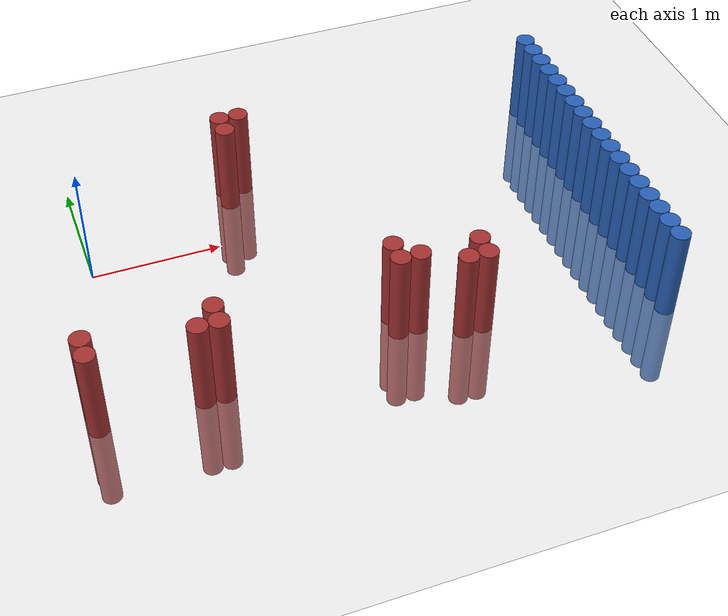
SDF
<sdf version="1.6">
 <world name="default">
  <model name="ground_plane">
   <static>1</static>
   <link name="link">
    <collision name="collision">
     <geometry><plane><normal>0 0 1</normal><size>100 100</size></plane></geometry>
     <surface><friction><ode><mu>100</mu><mu2>50</mu2></ode></friction></surface>
    </collision>
    <visual name="visual">
     <cast_shadows>0</cast_shadows>
     <geometry><plane><normal>0 0 1</normal><size>100 100</size></plane></geometry>
     <material>
      <script><uri>file://media/materials/scripts/gazebo.material</uri><name>Gazebo/Grey</name></script>
     </material>
    </visual>
   </link>
  </model>
  <model name="unit_cylinder_90">
   <static>1</static>
   <pose>3.925000 -1.775000 0.000000 0.000000 0.000000 0.000000</pose>
   <link name="link">
    <inertial>
     <mass>1</mass>
     <inertia><ixx>0.145833</ixx><ixy>0</ixy><ixz>0</ixz><iyy>0.145833</iyy><iyz>0</iyz><izz>0.125</izz></inertia>
    </inertial>
    <collision name="collision">
     <geometry><cylinder><radius>0.075000</radius><length>1.5</length></cylinder></geometry>
    </collision>
    <visual name="visual">
     <geometry><cylinder><radius>0.075000</radius><length>1.5</length></cylinder></geometry>
     <material>
      <ambient>0.152000 0.379000 0.720000 1</ambient>
      <diffuse>0.152000 0.379000 0.720000 1</diffuse>
     </material>
     <material>
      <script><name>Gazebo/Grey</name><uri>file://media/materials/scripts/gazebo.material</uri></script>
     </material>
    </visual>
   </link>
  </model>
  <model name="unit_cylinder_92">
   <static>1</static>
   <pose>3.925000 -1.625000 0.000000 0.000000 0.000000 0.000000</pose>
   <link name="link">
    <inertial>
     <mass>1</mass>
     <inertia><ixx>0.145833</ixx><ixy>0</ixy><ixz>0</ixz><iyy>0.145833</iyy><iyz>0</iyz><izz>0.125</izz></inertia>
    </inertial>
    <collision name="collision">
     <geometry><cylinder><radius>0.075000</radius><length>1.5</length></cylinder></geometry>
    </collision>
    <visual name="visual">
     <geometry><cylinder><radius>0.075000</radius><length>1.5</length></cylinder></geometry>
     <material>
      <ambient>0.152000 0.379000 0.720000 1</ambient>
      <diffuse>0.152000 0.379000 0.720000 1</diffuse>
     </material>
     <material>
      <script><name>Gazebo/Grey</name><uri>file://media/materials/scripts/gazebo.material</uri></script>
     </material>
    </visual>
   </link>
  </model>
  <model name="unit_cylinder_94">
   <static>1</static>
   <pose>3.925000 -1.475000 0.000000 0.000000 0.000000 0.000000</pose>
   <link name="link">
    <inertial>
     <mass>1</mass>
     <inertia><ixx>0.145833</ixx><ixy>0</ixy><ixz>0</ixz><iyy>0.145833</iyy><iyz>0</iyz><izz>0.125</izz></inertia>
    </inertial>
    <collision name="collision">
     <geometry><cylinder><radius>0.075000</radius><length>1.5</length></cylinder></geometry>
    </collision>
    <visual name="visual">
     <geometry><cylinder><radius>0.075000</radius><length>1.5</length></cylinder></geometry>
     <material>
      <ambient>0.152000 0.379000 0.720000 1</ambient>
      <diffuse>0.152000 0.379000 0.720000 1</diffuse>
     </material>
     <material>
      <script><name>Gazebo/Grey</name><uri>file://media/materials/scripts/gazebo.material</uri></script>
     </material>
    </visual>
   </link>
  </model>
  <model name="unit_cylinder_96">
   <static>1</static>
   <pose>3.925000 -1.325000 0.000000 0.000000 0.000000 0.000000</pose>
   <link name="link">
    <inertial>
     <mass>1</mass>
     <inertia><ixx>0.145833</ixx><ixy>0</ixy><ixz>0</ixz><iyy>0.145833</iyy><iyz>0</iyz><izz>0.125</izz></inertia>
    </inertial>
    <collision name="collision">
     <geometry><cylinder><radius>0.075000</radius><length>1.5</length></cylinder></geometry>
    </collision>
    <visual name="visual">
     <geometry><cylinder><radius>0.075000</radius><length>1.5</length></cylinder></geometry>
     <material>
      <ambient>0.152000 0.379000 0.720000 1</ambient>
      <diffuse>0.152000 0.379000 0.720000 1</diffuse>
     </material>
     <material>
      <script><name>Gazebo/Grey</name><uri>file://media/materials/scripts/gazebo.material</uri></script>
     </material>
    </visual>
   </link>
  </model>
  <model name="unit_cylinder_98">
   <static>1</static>
   <pose>3.925000 -1.175000 0.000000 0.000000 0.000000 0.000000</pose>
   <link name="link">
    <inertial>
     <mass>1</mass>
     <inertia><ixx>0.145833</ixx><ixy>0</ixy><ixz>0</ixz><iyy>0.145833</iyy><iyz>0</iyz><izz>0.125</izz></inertia>
    </inertial>
    <collision name="collision">
     <geometry><cylinder><radius>0.075000</radius><length>1.5</length></cylinder></geometry>
    </collision>
    <visual name="visual">
     <geometry><cylinder><radius>0.075000</radius><length>1.5</length></cylinder></geometry>
     <material>
      <ambient>0.152000 0.379000 0.720000 1</ambient>
      <diffuse>0.152000 0.379000 0.720000 1</diffuse>
     </material>
     <material>
      <script><name>Gazebo/Grey</name><uri>file://media/materials/scripts/gazebo.material</uri></script>
     </material>
    </visual>
   </link>
  </model>
  <model name="unit_cylinder_100">
   <static>1</static>
   <pose>3.925000 -1.025000 0.000000 0.000000 0.000000 0.000000</pose>
   <link name="link">
    <inertial>
     <mass>1</mass>
     <inertia><ixx>0.145833</ixx><ixy>0</ixy><ixz>0</ixz><iyy>0.145833</iyy><iyz>0</iyz><izz>0.125</izz></inertia>
    </inertial>
    <collision name="collision">
     <geometry><cylinder><radius>0.075000</radius><length>1.5</length></cylinder></geometry>
    </collision>
    <visual name="visual">
     <geometry><cylinder><radius>0.075000</radius><length>1.5</length></cylinder></geometry>
     <material>
      <ambient>0.152000 0.379000 0.720000 1</ambient>
      <diffuse>0.152000 0.379000 0.720000 1</diffuse>
     </material>
     <material>
      <script><name>Gazebo/Grey</name><uri>file://media/materials/scripts/gazebo.material</uri></script>
     </material>
    </visual>
   </link>
  </model>
  <model name="unit_cylinder_102">
   <static>1</static>
   <pose>3.925000 -0.875000 0.000000 0.000000 0.000000 0.000000</pose>
   <link name="link">
    <inertial>
     <mass>1</mass>
     <inertia><ixx>0.145833</ixx><ixy>0</ixy><ixz>0</ixz><iyy>0.145833</iyy><iyz>0</iyz><izz>0.125</izz></inertia>
    </inertial>
    <collision name="collision">
     <geometry><cylinder><radius>0.075000</radius><length>1.5</length></cylinder></geometry>
    </collision>
    <visual name="visual">
     <geometry><cylinder><radius>0.075000</radius><length>1.5</length></cylinder></geometry>
     <material>
      <ambient>0.152000 0.379000 0.720000 1</ambient>
      <diffuse>0.152000 0.379000 0.720000 1</diffuse>
     </material>
     <material>
      <script><name>Gazebo/Grey</name><uri>file://media/materials/scripts/gazebo.material</uri></script>
     </material>
    </visual>
   </link>
  </model>
  <model name="unit_cylinder_104">
   <static>1</static>
   <pose>3.925000 -0.725000 0.000000 0.000000 0.000000 0.000000</pose>
   <link name="link">
    <inertial>
     <mass>1</mass>
     <inertia><ixx>0.145833</ixx><ixy>0</ixy><ixz>0</ixz><iyy>0.145833</iyy><iyz>0</iyz><izz>0.125</izz></inertia>
    </inertial>
    <collision name="collision">
     <geometry><cylinder><radius>0.075000</radius><length>1.5</length></cylinder></geometry>
    </collision>
    <visual name="visual">
     <geometry><cylinder><radius>0.075000</radius><length>1.5</length></cylinder></geometry>
     <material>
      <ambient>0.152000 0.379000 0.720000 1</ambient>
      <diffuse>0.152000 0.379000 0.720000 1</diffuse>
     </material>
     <material>
      <script><name>Gazebo/Grey</name><uri>file://media/materials/scripts/gazebo.material</uri></script>
     </material>
    </visual>
   </link>
  </model>
  <model name="unit_cylinder_106">
   <static>1</static>
   <pose>3.925000 -0.575000 0.000000 0.000000 0.000000 0.000000</pose>
   <link name="link">
    <inertial>
     <mass>1</mass>
     <inertia><ixx>0.145833</ixx><ixy>0</ixy><ixz>0</ixz><iyy>0.145833</iyy><iyz>0</iyz><izz>0.125</izz></inertia>
    </inertial>
    <collision name="collision">
     <geometry><cylinder><radius>0.075000</radius><length>1.5</length></cylinder></geometry>
    </collision>
    <visual name="visual">
     <geometry><cylinder><radius>0.075000</radius><length>1.5</length></cylinder></geometry>
     <material>
      <ambient>0.152000 0.379000 0.720000 1</ambient>
      <diffuse>0.152000 0.379000 0.720000 1</diffuse>
     </material>
     <material>
      <script><name>Gazebo/Grey</name><uri>file://media/materials/scripts/gazebo.material</uri></script>
     </material>
    </visual>
   </link>
  </model>
  <model name="unit_cylinder_108">
   <static>1</static>
   <pose>3.925000 -0.425000 0.000000 0.000000 0.000000 0.000000</pose>
   <link name="link">
    <inertial>
     <mass>1</mass>
     <inertia><ixx>0.145833</ixx><ixy>0</ixy><ixz>0</ixz><iyy>0.145833</iyy><iyz>0</iyz><izz>0.125</izz></inertia>
    </inertial>
    <collision name="collision">
     <geometry><cylinder><radius>0.075000</radius><length>1.5</length></cylinder></geometry>
    </collision>
    <visual name="visual">
     <geometry><cylinder><radius>0.075000</radius><length>1.5</length></cylinder></geometry>
     <material>
      <ambient>0.152000 0.379000 0.720000 1</ambient>
      <diffuse>0.152000 0.379000 0.720000 1</diffuse>
     </material>
     <material>
      <script><name>Gazebo/Grey</name><uri>file://media/materials/scripts/gazebo.material</uri></script>
     </material>
    </visual>
   </link>
  </model>
  <model name="unit_cylinder_110">
   <static>1</static>
   <pose>3.925000 -0.275000 0.000000 0.000000 0.000000 0.000000</pose>
   <link name="link">
    <inertial>
     <mass>1</mass>
     <inertia><ixx>0.145833</ixx><ixy>0</ixy><ixz>0</ixz><iyy>0.145833</iyy><iyz>0</iyz><izz>0.125</izz></inertia>
    </inertial>
    <collision name="collision">
     <geometry><cylinder><radius>0.075000</radius><length>1.5</length></cylinder></geometry>
    </collision>
    <visual name="visual">
     <geometry><cylinder><radius>0.075000</radius><length>1.5</length></cylinder></geometry>
     <material>
      <ambient>0.152000 0.379000 0.720000 1</ambient>
      <diffuse>0.152000 0.379000 0.720000 1</diffuse>
     </material>
     <material>
      <script><name>Gazebo/Grey</name><uri>file://media/materials/scripts/gazebo.material</uri></script>
     </material>
    </visual>
   </link>
  </model>
  <model name="unit_cylinder_112">
   <static>1</static>
   <pose>3.925000 -0.125000 0.000000 0.000000 0.000000 0.000000</pose>
   <link name="link">
    <inertial>
     <mass>1</mass>
     <inertia><ixx>0.145833</ixx><ixy>0</ixy><ixz>0</ixz><iyy>0.145833</iyy><iyz>0</iyz><izz>0.125</izz></inertia>
    </inertial>
    <collision name="collision">
     <geometry><cylinder><radius>0.075000</radius><length>1.5</length></cylinder></geometry>
    </collision>
    <visual name="visual">
     <geometry><cylinder><radius>0.075000</radius><length>1.5</length></cylinder></geometry>
     <material>
      <ambient>0.152000 0.379000 0.720000 1</ambient>
      <diffuse>0.152000 0.379000 0.720000 1</diffuse>
     </material>
     <material>
      <script><name>Gazebo/Grey</name><uri>file://media/materials/scripts/gazebo.material</uri></script>
     </material>
    </visual>
   </link>
  </model>
  <model name="unit_cylinder_114">
   <static>1</static>
   <pose>3.925000 0.025000 0.000000 0.000000 0.000000 0.000000</pose>
   <link name="link">
    <inertial>
     <mass>1</mass>
     <inertia><ixx>0.145833</ixx><ixy>0</ixy><ixz>0</ixz><iyy>0.145833</iyy><iyz>0</iyz><izz>0.125</izz></inertia>
    </inertial>
    <collision name="collision">
     <geometry><cylinder><radius>0.075000</radius><length>1.5</length></cylinder></geometry>
    </collision>
    <visual name="visual">
     <geometry><cylinder><radius>0.075000</radius><length>1.5</length></cylinder></geometry>
     <material>
      <ambient>0.152000 0.379000 0.720000 1</ambient>
      <diffuse>0.152000 0.379000 0.720000 1</diffuse>
     </material>
     <material>
      <script><name>Gazebo/Grey</name><uri>file://media/materials/scripts/gazebo.material</uri></script>
     </material>
    </visual>
   </link>
  </model>
  <model name="unit_cylinder_116">
   <static>1</static>
   <pose>3.925000 0.175000 0.000000 0.000000 0.000000 0.000000</pose>
   <link name="link">
    <inertial>
     <mass>1</mass>
     <inertia><ixx>0.145833</ixx><ixy>0</ixy><ixz>0</ixz><iyy>0.145833</iyy><iyz>0</iyz><izz>0.125</izz></inertia>
    </inertial>
    <collision name="collision">
     <geometry><cylinder><radius>0.075000</radius><length>1.5</length></cylinder></geometry>
    </collision>
    <visual name="visual">
     <geometry><cylinder><radius>0.075000</radius><length>1.5</length></cylinder></geometry>
     <material>
      <ambient>0.152000 0.379000 0.720000 1</ambient>
      <diffuse>0.152000 0.379000 0.720000 1</diffuse>
     </material>
     <material>
      <script><name>Gazebo/Grey</name><uri>file://media/materials/scripts/gazebo.material</uri></script>
     </material>
    </visual>
   </link>
  </model>
  <model name="unit_cylinder_118">
   <static>1</static>
   <pose>3.925000 0.325000 0.000000 0.000000 0.000000 0.000000</pose>
   <link name="link">
    <inertial>
     <mass>1</mass>
     <inertia><ixx>0.145833</ixx><ixy>0</ixy><ixz>0</ixz><iyy>0.145833</iyy><iyz>0</iyz><izz>0.125</izz></inertia>
    </inertial>
    <collision name="collision">
     <geometry><cylinder><radius>0.075000</radius><length>1.5</length></cylinder></geometry>
    </collision>
    <visual name="visual">
     <geometry><cylinder><radius>0.075000</radius><length>1.5</length></cylinder></geometry>
     <material>
      <ambient>0.152000 0.379000 0.720000 1</ambient>
      <diffuse>0.152000 0.379000 0.720000 1</diffuse>
     </material>
     <material>
      <script><name>Gazebo/Grey</name><uri>file://media/materials/scripts/gazebo.material</uri></script>
     </material>
    </visual>
   </link>
  </model>
  <model name="unit_cylinder_120">
   <static>1</static>
   <pose>3.925000 0.475000 0.000000 0.000000 0.000000 0.000000</pose>
   <link name="link">
    <inertial>
     <mass>1</mass>
     <inertia><ixx>0.145833</ixx><ixy>0</ixy><ixz>0</ixz><iyy>0.145833</iyy><iyz>0</iyz><izz>0.125</izz></inertia>
    </inertial>
    <collision name="collision">
     <geometry><cylinder><radius>0.075000</radius><length>1.5</length></cylinder></geometry>
    </collision>
    <visual name="visual">
     <geometry><cylinder><radius>0.075000</radius><length>1.5</length></cylinder></geometry>
     <material>
      <ambient>0.152000 0.379000 0.720000 1</ambient>
      <diffuse>0.152000 0.379000 0.720000 1</diffuse>
     </material>
     <material>
      <script><name>Gazebo/Grey</name><uri>file://media/materials/scripts/gazebo.material</uri></script>
     </material>
    </visual>
   </link>
  </model>
  <model name="unit_cylinder_122">
   <static>1</static>
   <pose>3.925000 0.625000 0.000000 0.000000 0.000000 0.000000</pose>
   <link name="link">
    <inertial>
     <mass>1</mass>
     <inertia><ixx>0.145833</ixx><ixy>0</ixy><ixz>0</ixz><iyy>0.145833</iyy><iyz>0</iyz><izz>0.125</izz></inertia>
    </inertial>
    <collision name="collision">
     <geometry><cylinder><radius>0.075000</radius><length>1.5</length></cylinder></geometry>
    </collision>
    <visual name="visual">
     <geometry><cylinder><radius>0.075000</radius><length>1.5</length></cylinder></geometry>
     <material>
      <ambient>0.152000 0.379000 0.720000 1</ambient>
      <diffuse>0.152000 0.379000 0.720000 1</diffuse>
     </material>
     <material>
      <script><name>Gazebo/Grey</name><uri>file://media/materials/scripts/gazebo.material</uri></script>
     </material>
    </visual>
   </link>
  </model>
  <model name="unit_cylinder_124">
   <static>1</static>
   <pose>3.925000 0.775000 0.000000 0.000000 0.000000 0.000000</pose>
   <link name="link">
    <inertial>
     <mass>1</mass>
     <inertia><ixx>0.145833</ixx><ixy>0</ixy><ixz>0</ixz><iyy>0.145833</iyy><iyz>0</iyz><izz>0.125</izz></inertia>
    </inertial>
    <collision name="collision">
     <geometry><cylinder><radius>0.075000</radius><length>1.5</length></cylinder></geometry>
    </collision>
    <visual name="visual">
     <geometry><cylinder><radius>0.075000</radius><length>1.5</length></cylinder></geometry>
     <material>
      <ambient>0.152000 0.379000 0.720000 1</ambient>
      <diffuse>0.152000 0.379000 0.720000 1</diffuse>
     </material>
     <material>
      <script><name>Gazebo/Grey</name><uri>file://media/materials/scripts/gazebo.material</uri></script>
     </material>
    </visual>
   </link>
  </model>
  <model name="unit_cylinder_302">
   <static>1</static>
   <pose>-0.275000 -1.475000 0.000000 0.000000 0.000000 0.000000</pose>
   <link name="link">
    <inertial>
     <mass>1</mass>
     <inertia><ixx>0.145833</ixx><ixy>0</ixy><ixz>0</ixz><iyy>0.145833</iyy><iyz>0</iyz><izz>0.125</izz></inertia>
    </inertial>
    <collision name="collision">
     <geometry><cylinder><radius>0.075000</radius><length>1.5</length></cylinder></geometry>
    </collision>
    <visual name="visual">
     <geometry><cylinder><radius>0.075000</radius><length>1.5</length></cylinder></geometry>
     <material>
      <ambient>0.648000 0.192000 0.192000 1</ambient>
      <diffuse>0.648000 0.192000 0.192000 1</diffuse>
     </material>
     <material>
      <script><name>Gazebo/Grey</name><uri>file://media/materials/scripts/gazebo.material</uri></script>
     </material>
    </visual>
   </link>
  </model>
  <model name="unit_cylinder_303">
   <static>1</static>
   <pose>-0.275000 -1.325000 0.000000 0.000000 0.000000 0.000000</pose>
   <link name="link">
    <inertial>
     <mass>1</mass>
     <inertia><ixx>0.145833</ixx><ixy>0</ixy><ixz>0</ixz><iyy>0.145833</iyy><iyz>0</iyz><izz>0.125</izz></inertia>
    </inertial>
    <collision name="collision">
     <geometry><cylinder><radius>0.075000</radius><length>1.5</length></cylinder></geometry>
    </collision>
    <visual name="visual">
     <geometry><cylinder><radius>0.075000</radius><length>1.5</length></cylinder></geometry>
     <material>
      <ambient>0.648000 0.192000 0.192000 1</ambient>
      <diffuse>0.648000 0.192000 0.192000 1</diffuse>
     </material>
     <material>
      <script><name>Gazebo/Grey</name><uri>file://media/materials/scripts/gazebo.material</uri></script>
     </material>
    </visual>
   </link>
  </model>
  <model name="unit_cylinder_307">
   <static>1</static>
   <pose>0.475000 -1.475000 0.000000 0.000000 0.000000 0.000000</pose>
   <link name="link">
    <inertial>
     <mass>1</mass>
     <inertia><ixx>0.145833</ixx><ixy>0</ixy><ixz>0</ixz><iyy>0.145833</iyy><iyz>0</iyz><izz>0.125</izz></inertia>
    </inertial>
    <collision name="collision">
     <geometry><cylinder><radius>0.075000</radius><length>1.5</length></cylinder></geometry>
    </collision>
    <visual name="visual">
     <geometry><cylinder><radius>0.075000</radius><length>1.5</length></cylinder></geometry>
     <material>
      <ambient>0.648000 0.192000 0.192000 1</ambient>
      <diffuse>0.648000 0.192000 0.192000 1</diffuse>
     </material>
     <material>
      <script><name>Gazebo/Grey</name><uri>file://media/materials/scripts/gazebo.material</uri></script>
     </material>
    </visual>
   </link>
  </model>
  <model name="unit_cylinder_308">
   <static>1</static>
   <pose>0.625000 -1.475000 0.000000 0.000000 0.000000 0.000000</pose>
   <link name="link">
    <inertial>
     <mass>1</mass>
     <inertia><ixx>0.145833</ixx><ixy>0</ixy><ixz>0</ixz><iyy>0.145833</iyy><iyz>0</iyz><izz>0.125</izz></inertia>
    </inertial>
    <collision name="collision">
     <geometry><cylinder><radius>0.075000</radius><length>1.5</length></cylinder></geometry>
    </collision>
    <visual name="visual">
     <geometry><cylinder><radius>0.075000</radius><length>1.5</length></cylinder></geometry>
     <material>
      <ambient>0.648000 0.192000 0.192000 1</ambient>
      <diffuse>0.648000 0.192000 0.192000 1</diffuse>
     </material>
     <material>
      <script><name>Gazebo/Grey</name><uri>file://media/materials/scripts/gazebo.material</uri></script>
     </material>
    </visual>
   </link>
  </model>
  <model name="unit_cylinder_309">
   <static>1</static>
   <pose>0.625000 -1.325000 0.000000 0.000000 0.000000 0.000000</pose>
   <link name="link">
    <inertial>
     <mass>1</mass>
     <inertia><ixx>0.145833</ixx><ixy>0</ixy><ixz>0</ixz><iyy>0.145833</iyy><iyz>0</iyz><izz>0.125</izz></inertia>
    </inertial>
    <collision name="collision">
     <geometry><cylinder><radius>0.075000</radius><length>1.5</length></cylinder></geometry>
    </collision>
    <visual name="visual">
     <geometry><cylinder><radius>0.075000</radius><length>1.5</length></cylinder></geometry>
     <material>
      <ambient>0.648000 0.192000 0.192000 1</ambient>
      <diffuse>0.648000 0.192000 0.192000 1</diffuse>
     </material>
     <material>
      <script><name>Gazebo/Grey</name><uri>file://media/materials/scripts/gazebo.material</uri></script>
     </material>
    </visual>
   </link>
  </model>
  <model name="unit_cylinder_310">
   <static>1</static>
   <pose>1.225000 0.475000 0.000000 0.000000 0.000000 0.000000</pose>
   <link name="link">
    <inertial>
     <mass>1</mass>
     <inertia><ixx>0.145833</ixx><ixy>0</ixy><ixz>0</ixz><iyy>0.145833</iyy><iyz>0</iyz><izz>0.125</izz></inertia>
    </inertial>
    <collision name="collision">
     <geometry><cylinder><radius>0.075000</radius><length>1.5</length></cylinder></geometry>
    </collision>
    <visual name="visual">
     <geometry><cylinder><radius>0.075000</radius><length>1.5</length></cylinder></geometry>
     <material>
      <ambient>0.648000 0.192000 0.192000 1</ambient>
      <diffuse>0.648000 0.192000 0.192000 1</diffuse>
     </material>
     <material>
      <script><name>Gazebo/Grey</name><uri>file://media/materials/scripts/gazebo.material</uri></script>
     </material>
    </visual>
   </link>
  </model>
  <model name="unit_cylinder_311">
   <static>1</static>
   <pose>1.225000 0.625000 0.000000 0.000000 0.000000 0.000000</pose>
   <link name="link">
    <inertial>
     <mass>1</mass>
     <inertia><ixx>0.145833</ixx><ixy>0</ixy><ixz>0</ixz><iyy>0.145833</iyy><iyz>0</iyz><izz>0.125</izz></inertia>
    </inertial>
    <collision name="collision">
     <geometry><cylinder><radius>0.075000</radius><length>1.5</length></cylinder></geometry>
    </collision>
    <visual name="visual">
     <geometry><cylinder><radius>0.075000</radius><length>1.5</length></cylinder></geometry>
     <material>
      <ambient>0.648000 0.192000 0.192000 1</ambient>
      <diffuse>0.648000 0.192000 0.192000 1</diffuse>
     </material>
     <material>
      <script><name>Gazebo/Grey</name><uri>file://media/materials/scripts/gazebo.material</uri></script>
     </material>
    </visual>
   </link>
  </model>
  <model name="unit_cylinder_312">
   <static>1</static>
   <pose>1.375000 0.625000 0.000000 0.000000 0.000000 0.000000</pose>
   <link name="link">
    <inertial>
     <mass>1</mass>
     <inertia><ixx>0.145833</ixx><ixy>0</ixy><ixz>0</ixz><iyy>0.145833</iyy><iyz>0</iyz><izz>0.125</izz></inertia>
    </inertial>
    <collision name="collision">
     <geometry><cylinder><radius>0.075000</radius><length>1.5</length></cylinder></geometry>
    </collision>
    <visual name="visual">
     <geometry><cylinder><radius>0.075000</radius><length>1.5</length></cylinder></geometry>
     <material>
      <ambient>0.648000 0.192000 0.192000 1</ambient>
      <diffuse>0.648000 0.192000 0.192000 1</diffuse>
     </material>
     <material>
      <script><name>Gazebo/Grey</name><uri>file://media/materials/scripts/gazebo.material</uri></script>
     </material>
    </visual>
   </link>
  </model>
  <model name="unit_cylinder_317">
   <static>1</static>
   <pose>1.975000 -1.325000 0.000000 0.000000 0.000000 0.000000</pose>
   <link name="link">
    <inertial>
     <mass>1</mass>
     <inertia><ixx>0.145833</ixx><ixy>0</ixy><ixz>0</ixz><iyy>0.145833</iyy><iyz>0</iyz><izz>0.125</izz></inertia>
    </inertial>
    <collision name="collision">
     <geometry><cylinder><radius>0.075000</radius><length>1.5</length></cylinder></geometry>
    </collision>
    <visual name="visual">
     <geometry><cylinder><radius>0.075000</radius><length>1.5</length></cylinder></geometry>
     <material>
      <ambient>0.648000 0.192000 0.192000 1</ambient>
      <diffuse>0.648000 0.192000 0.192000 1</diffuse>
     </material>
     <material>
      <script><name>Gazebo/Grey</name><uri>file://media/materials/scripts/gazebo.material</uri></script>
     </material>
    </visual>
   </link>
  </model>
  <model name="unit_cylinder_318">
   <static>1</static>
   <pose>1.975000 -1.175000 0.000000 0.000000 0.000000 0.000000</pose>
   <link name="link">
    <inertial>
     <mass>1</mass>
     <inertia><ixx>0.145833</ixx><ixy>0</ixy><ixz>0</ixz><iyy>0.145833</iyy><iyz>0</iyz><izz>0.125</izz></inertia>
    </inertial>
    <collision name="collision">
     <geometry><cylinder><radius>0.075000</radius><length>1.5</length></cylinder></geometry>
    </collision>
    <visual name="visual">
     <geometry><cylinder><radius>0.075000</radius><length>1.5</length></cylinder></geometry>
     <material>
      <ambient>0.648000 0.192000 0.192000 1</ambient>
      <diffuse>0.648000 0.192000 0.192000 1</diffuse>
     </material>
     <material>
      <script><name>Gazebo/Grey</name><uri>file://media/materials/scripts/gazebo.material</uri></script>
     </material>
    </visual>
   </link>
  </model>
  <model name="unit_cylinder_319">
   <static>1</static>
   <pose>2.125000 -1.325000 0.000000 0.000000 0.000000 0.000000</pose>
   <link name="link">
    <inertial>
     <mass>1</mass>
     <inertia><ixx>0.145833</ixx><ixy>0</ixy><ixz>0</ixz><iyy>0.145833</iyy><iyz>0</iyz><izz>0.125</izz></inertia>
    </inertial>
    <collision name="collision">
     <geometry><cylinder><radius>0.075000</radius><length>1.5</length></cylinder></geometry>
    </collision>
    <visual name="visual">
     <geometry><cylinder><radius>0.075000</radius><length>1.5</length></cylinder></geometry>
     <material>
      <ambient>0.648000 0.192000 0.192000 1</ambient>
      <diffuse>0.648000 0.192000 0.192000 1</diffuse>
     </material>
     <material>
      <script><name>Gazebo/Grey</name><uri>file://media/materials/scripts/gazebo.material</uri></script>
     </material>
    </visual>
   </link>
  </model>
  <model name="unit_cylinder_320">
   <static>1</static>
   <pose>2.425000 -1.475000 0.000000 0.000000 0.000000 0.000000</pose>
   <link name="link">
    <inertial>
     <mass>1</mass>
     <inertia><ixx>0.145833</ixx><ixy>0</ixy><ixz>0</ixz><iyy>0.145833</iyy><iyz>0</iyz><izz>0.125</izz></inertia>
    </inertial>
    <collision name="collision">
     <geometry><cylinder><radius>0.075000</radius><length>1.5</length></cylinder></geometry>
    </collision>
    <visual name="visual">
     <geometry><cylinder><radius>0.075000</radius><length>1.5</length></cylinder></geometry>
     <material>
      <ambient>0.648000 0.192000 0.192000 1</ambient>
      <diffuse>0.648000 0.192000 0.192000 1</diffuse>
     </material>
     <material>
      <script><name>Gazebo/Grey</name><uri>file://media/materials/scripts/gazebo.material</uri></script>
     </material>
    </visual>
   </link>
  </model>
  <model name="unit_cylinder_326">
   <static>1</static>
   <pose>2.575000 -1.475000 0.000000 0.000000 0.000000 0.000000</pose>
   <link name="link">
    <inertial>
     <mass>1</mass>
     <inertia><ixx>0.145833</ixx><ixy>0</ixy><ixz>0</ixz><iyy>0.145833</iyy><iyz>0</iyz><izz>0.125</izz></inertia>
    </inertial>
    <collision name="collision">
     <geometry><cylinder><radius>0.075000</radius><length>1.5</length></cylinder></geometry>
    </collision>
    <visual name="visual">
     <geometry><cylinder><radius>0.075000</radius><length>1.5</length></cylinder></geometry>
     <material>
      <ambient>0.648000 0.192000 0.192000 1</ambient>
      <diffuse>0.648000 0.192000 0.192000 1</diffuse>
     </material>
     <material>
      <script><name>Gazebo/Grey</name><uri>file://media/materials/scripts/gazebo.material</uri></script>
     </material>
    </visual>
   </link>
  </model>
  <model name="unit_cylinder_327">
   <static>1</static>
   <pose>2.575000 -1.325000 0.000000 0.000000 0.000000 0.000000</pose>
   <link name="link">
    <inertial>
     <mass>1</mass>
     <inertia><ixx>0.145833</ixx><ixy>0</ixy><ixz>0</ixz><iyy>0.145833</iyy><iyz>0</iyz><izz>0.125</izz></inertia>
    </inertial>
    <collision name="collision">
     <geometry><cylinder><radius>0.075000</radius><length>1.5</length></cylinder></geometry>
    </collision>
    <visual name="visual">
     <geometry><cylinder><radius>0.075000</radius><length>1.5</length></cylinder></geometry>
     <material>
      <ambient>0.648000 0.192000 0.192000 1</ambient>
      <diffuse>0.648000 0.192000 0.192000 1</diffuse>
     </material>
     <material>
      <script><name>Gazebo/Grey</name><uri>file://media/materials/scripts/gazebo.material</uri></script>
     </material>
    </visual>
   </link>
  </model>
  <model name="unit_cylinder_345">
   <static>1</static>
   <pose>3.925000 -1.775000 0.000000 0.000000 0.000000 0.000000</pose>
   <link name="link">
    <inertial>
     <mass>1</mass>
     <inertia><ixx>0.145833</ixx><ixy>0</ixy><ixz>0</ixz><iyy>0.145833</iyy><iyz>0</iyz><izz>0.125</izz></inertia>
    </inertial>
    <collision name="collision">
     <geometry><cylinder><radius>0.075000</radius><length>1.5</length></cylinder></geometry>
    </collision>
    <visual name="visual">
     <geometry><cylinder><radius>0.075000</radius><length>1.5</length></cylinder></geometry>
     <material>
      <ambient>0.152000 0.379000 0.720000 1</ambient>
      <diffuse>0.152000 0.379000 0.720000 1</diffuse>
     </material>
     <material>
      <script><name>Gazebo/Grey</name><uri>file://media/materials/scripts/gazebo.material</uri></script>
     </material>
    </visual>
   </link>
  </model>
  <model name="unit_cylinder_346">
   <static>1</static>
   <pose>3.925000 -1.625000 0.000000 0.000000 0.000000 0.000000</pose>
   <link name="link">
    <inertial>
     <mass>1</mass>
     <inertia><ixx>0.145833</ixx><ixy>0</ixy><ixz>0</ixz><iyy>0.145833</iyy><iyz>0</iyz><izz>0.125</izz></inertia>
    </inertial>
    <collision name="collision">
     <geometry><cylinder><radius>0.075000</radius><length>1.5</length></cylinder></geometry>
    </collision>
    <visual name="visual">
     <geometry><cylinder><radius>0.075000</radius><length>1.5</length></cylinder></geometry>
     <material>
      <ambient>0.152000 0.379000 0.720000 1</ambient>
      <diffuse>0.152000 0.379000 0.720000 1</diffuse>
     </material>
     <material>
      <script><name>Gazebo/Grey</name><uri>file://media/materials/scripts/gazebo.material</uri></script>
     </material>
    </visual>
   </link>
  </model>
  <model name="unit_cylinder_347">
   <static>1</static>
   <pose>3.925000 -1.475000 0.000000 0.000000 0.000000 0.000000</pose>
   <link name="link">
    <inertial>
     <mass>1</mass>
     <inertia><ixx>0.145833</ixx><ixy>0</ixy><ixz>0</ixz><iyy>0.145833</iyy><iyz>0</iyz><izz>0.125</izz></inertia>
    </inertial>
    <collision name="collision">
     <geometry><cylinder><radius>0.075000</radius><length>1.5</length></cylinder></geometry>
    </collision>
    <visual name="visual">
     <geometry><cylinder><radius>0.075000</radius><length>1.5</length></cylinder></geometry>
     <material>
      <ambient>0.152000 0.379000 0.720000 1</ambient>
      <diffuse>0.152000 0.379000 0.720000 1</diffuse>
     </material>
     <material>
      <script><name>Gazebo/Grey</name><uri>file://media/materials/scripts/gazebo.material</uri></script>
     </material>
    </visual>
   </link>
  </model>
  <model name="unit_cylinder_348">
   <static>1</static>
   <pose>3.925000 -1.325000 0.000000 0.000000 0.000000 0.000000</pose>
   <link name="link">
    <inertial>
     <mass>1</mass>
     <inertia><ixx>0.145833</ixx><ixy>0</ixy><ixz>0</ixz><iyy>0.145833</iyy><iyz>0</iyz><izz>0.125</izz></inertia>
    </inertial>
    <collision name="collision">
     <geometry><cylinder><radius>0.075000</radius><length>1.5</length></cylinder></geometry>
    </collision>
    <visual name="visual">
     <geometry><cylinder><radius>0.075000</radius><length>1.5</length></cylinder></geometry>
     <material>
      <ambient>0.152000 0.379000 0.720000 1</ambient>
      <diffuse>0.152000 0.379000 0.720000 1</diffuse>
     </material>
     <material>
      <script><name>Gazebo/Grey</name><uri>file://media/materials/scripts/gazebo.material</uri></script>
     </material>
    </visual>
   </link>
  </model>
  <model name="unit_cylinder_349">
   <static>1</static>
   <pose>3.925000 -1.175000 0.000000 0.000000 0.000000 0.000000</pose>
   <link name="link">
    <inertial>
     <mass>1</mass>
     <inertia><ixx>0.145833</ixx><ixy>0</ixy><ixz>0</ixz><iyy>0.145833</iyy><iyz>0</iyz><izz>0.125</izz></inertia>
    </inertial>
    <collision name="collision">
     <geometry><cylinder><radius>0.075000</radius><length>1.5</length></cylinder></geometry>
    </collision>
    <visual name="visual">
     <geometry><cylinder><radius>0.075000</radius><length>1.5</length></cylinder></geometry>
     <material>
      <ambient>0.152000 0.379000 0.720000 1</ambient>
      <diffuse>0.152000 0.379000 0.720000 1</diffuse>
     </material>
     <material>
      <script><name>Gazebo/Grey</name><uri>file://media/materials/scripts/gazebo.material</uri></script>
     </material>
    </visual>
   </link>
  </model>
  <model name="unit_cylinder_350">
   <static>1</static>
   <pose>3.925000 -1.025000 0.000000 0.000000 0.000000 0.000000</pose>
   <link name="link">
    <inertial>
     <mass>1</mass>
     <inertia><ixx>0.145833</ixx><ixy>0</ixy><ixz>0</ixz><iyy>0.145833</iyy><iyz>0</iyz><izz>0.125</izz></inertia>
    </inertial>
    <collision name="collision">
     <geometry><cylinder><radius>0.075000</radius><length>1.5</length></cylinder></geometry>
    </collision>
    <visual name="visual">
     <geometry><cylinder><radius>0.075000</radius><length>1.5</length></cylinder></geometry>
     <material>
      <ambient>0.152000 0.379000 0.720000 1</ambient>
      <diffuse>0.152000 0.379000 0.720000 1</diffuse>
     </material>
     <material>
      <script><name>Gazebo/Grey</name><uri>file://media/materials/scripts/gazebo.material</uri></script>
     </material>
    </visual>
   </link>
  </model>
  <model name="unit_cylinder_351">
   <static>1</static>
   <pose>3.925000 -0.875000 0.000000 0.000000 0.000000 0.000000</pose>
   <link name="link">
    <inertial>
     <mass>1</mass>
     <inertia><ixx>0.145833</ixx><ixy>0</ixy><ixz>0</ixz><iyy>0.145833</iyy><iyz>0</iyz><izz>0.125</izz></inertia>
    </inertial>
    <collision name="collision">
     <geometry><cylinder><radius>0.075000</radius><length>1.5</length></cylinder></geometry>
    </collision>
    <visual name="visual">
     <geometry><cylinder><radius>0.075000</radius><length>1.5</length></cylinder></geometry>
     <material>
      <ambient>0.152000 0.379000 0.720000 1</ambient>
      <diffuse>0.152000 0.379000 0.720000 1</diffuse>
     </material>
     <material>
      <script><name>Gazebo/Grey</name><uri>file://media/materials/scripts/gazebo.material</uri></script>
     </material>
    </visual>
   </link>
  </model>
  <model name="unit_cylinder_352">
   <static>1</static>
   <pose>3.925000 -0.725000 0.000000 0.000000 0.000000 0.000000</pose>
   <link name="link">
    <inertial>
     <mass>1</mass>
     <inertia><ixx>0.145833</ixx><ixy>0</ixy><ixz>0</ixz><iyy>0.145833</iyy><iyz>0</iyz><izz>0.125</izz></inertia>
    </inertial>
    <collision name="collision">
     <geometry><cylinder><radius>0.075000</radius><length>1.5</length></cylinder></geometry>
    </collision>
    <visual name="visual">
     <geometry><cylinder><radius>0.075000</radius><length>1.5</length></cylinder></geometry>
     <material>
      <ambient>0.152000 0.379000 0.720000 1</ambient>
      <diffuse>0.152000 0.379000 0.720000 1</diffuse>
     </material>
     <material>
      <script><name>Gazebo/Grey</name><uri>file://media/materials/scripts/gazebo.material</uri></script>
     </material>
    </visual>
   </link>
  </model>
  <model name="unit_cylinder_353">
   <static>1</static>
   <pose>3.925000 -0.575000 0.000000 0.000000 0.000000 0.000000</pose>
   <link name="link">
    <inertial>
     <mass>1</mass>
     <inertia><ixx>0.145833</ixx><ixy>0</ixy><ixz>0</ixz><iyy>0.145833</iyy><iyz>0</iyz><izz>0.125</izz></inertia>
    </inertial>
    <collision name="collision">
     <geometry><cylinder><radius>0.075000</radius><length>1.5</length></cylinder></geometry>
    </collision>
    <visual name="visual">
     <geometry><cylinder><radius>0.075000</radius><length>1.5</length></cylinder></geometry>
     <material>
      <ambient>0.152000 0.379000 0.720000 1</ambient>
      <diffuse>0.152000 0.379000 0.720000 1</diffuse>
     </material>
     <material>
      <script><name>Gazebo/Grey</name><uri>file://media/materials/scripts/gazebo.material</uri></script>
     </material>
    </visual>
   </link>
  </model>
  <model name="unit_cylinder_354">
   <static>1</static>
   <pose>3.925000 -0.425000 0.000000 0.000000 0.000000 0.000000</pose>
   <link name="link">
    <inertial>
     <mass>1</mass>
     <inertia><ixx>0.145833</ixx><ixy>0</ixy><ixz>0</ixz><iyy>0.145833</iyy><iyz>0</iyz><izz>0.125</izz></inertia>
    </inertial>
    <collision name="collision">
     <geometry><cylinder><radius>0.075000</radius><length>1.5</length></cylinder></geometry>
    </collision>
    <visual name="visual">
     <geometry><cylinder><radius>0.075000</radius><length>1.5</length></cylinder></geometry>
     <material>
      <ambient>0.152000 0.379000 0.720000 1</ambient>
      <diffuse>0.152000 0.379000 0.720000 1</diffuse>
     </material>
     <material>
      <script><name>Gazebo/Grey</name><uri>file://media/materials/scripts/gazebo.material</uri></script>
     </material>
    </visual>
   </link>
  </model>
  <model name="unit_cylinder_355">
   <static>1</static>
   <pose>3.925000 -0.275000 0.000000 0.000000 0.000000 0.000000</pose>
   <link name="link">
    <inertial>
     <mass>1</mass>
     <inertia><ixx>0.145833</ixx><ixy>0</ixy><ixz>0</ixz><iyy>0.145833</iyy><iyz>0</iyz><izz>0.125</izz></inertia>
    </inertial>
    <collision name="collision">
     <geometry><cylinder><radius>0.075000</radius><length>1.5</length></cylinder></geometry>
    </collision>
    <visual name="visual">
     <geometry><cylinder><radius>0.075000</radius><length>1.5</length></cylinder></geometry>
     <material>
      <ambient>0.152000 0.379000 0.720000 1</ambient>
      <diffuse>0.152000 0.379000 0.720000 1</diffuse>
     </material>
     <material>
      <script><name>Gazebo/Grey</name><uri>file://media/materials/scripts/gazebo.material</uri></script>
     </material>
    </visual>
   </link>
  </model>
  <model name="unit_cylinder_356">
   <static>1</static>
   <pose>3.925000 -0.125000 0.000000 0.000000 0.000000 0.000000</pose>
   <link name="link">
    <inertial>
     <mass>1</mass>
     <inertia><ixx>0.145833</ixx><ixy>0</ixy><ixz>0</ixz><iyy>0.145833</iyy><iyz>0</iyz><izz>0.125</izz></inertia>
    </inertial>
    <collision name="collision">
     <geometry><cylinder><radius>0.075000</radius><length>1.5</length></cylinder></geometry>
    </collision>
    <visual name="visual">
     <geometry><cylinder><radius>0.075000</radius><length>1.5</length></cylinder></geometry>
     <material>
      <ambient>0.152000 0.379000 0.720000 1</ambient>
      <diffuse>0.152000 0.379000 0.720000 1</diffuse>
     </material>
     <material>
      <script><name>Gazebo/Grey</name><uri>file://media/materials/scripts/gazebo.material</uri></script>
     </material>
    </visual>
   </link>
  </model>
  <model name="unit_cylinder_357">
   <static>1</static>
   <pose>3.925000 0.025000 0.000000 0.000000 0.000000 0.000000</pose>
   <link name="link">
    <inertial>
     <mass>1</mass>
     <inertia><ixx>0.145833</ixx><ixy>0</ixy><ixz>0</ixz><iyy>0.145833</iyy><iyz>0</iyz><izz>0.125</izz></inertia>
    </inertial>
    <collision name="collision">
     <geometry><cylinder><radius>0.075000</radius><length>1.5</length></cylinder></geometry>
    </collision>
    <visual name="visual">
     <geometry><cylinder><radius>0.075000</radius><length>1.5</length></cylinder></geometry>
     <material>
      <ambient>0.152000 0.379000 0.720000 1</ambient>
      <diffuse>0.152000 0.379000 0.720000 1</diffuse>
     </material>
     <material>
      <script><name>Gazebo/Grey</name><uri>file://media/materials/scripts/gazebo.material</uri></script>
     </material>
    </visual>
   </link>
  </model>
  <model name="unit_cylinder_358">
   <static>1</static>
   <pose>3.925000 0.175000 0.000000 0.000000 0.000000 0.000000</pose>
   <link name="link">
    <inertial>
     <mass>1</mass>
     <inertia><ixx>0.145833</ixx><ixy>0</ixy><ixz>0</ixz><iyy>0.145833</iyy><iyz>0</iyz><izz>0.125</izz></inertia>
    </inertial>
    <collision name="collision">
     <geometry><cylinder><radius>0.075000</radius><length>1.5</length></cylinder></geometry>
    </collision>
    <visual name="visual">
     <geometry><cylinder><radius>0.075000</radius><length>1.5</length></cylinder></geometry>
     <material>
      <ambient>0.152000 0.379000 0.720000 1</ambient>
      <diffuse>0.152000 0.379000 0.720000 1</diffuse>
     </material>
     <material>
      <script><name>Gazebo/Grey</name><uri>file://media/materials/scripts/gazebo.material</uri></script>
     </material>
    </visual>
   </link>
  </model>
  <model name="unit_cylinder_359">
   <static>1</static>
   <pose>3.925000 0.325000 0.000000 0.000000 0.000000 0.000000</pose>
   <link name="link">
    <inertial>
     <mass>1</mass>
     <inertia><ixx>0.145833</ixx><ixy>0</ixy><ixz>0</ixz><iyy>0.145833</iyy><iyz>0</iyz><izz>0.125</izz></inertia>
    </inertial>
    <collision name="collision">
     <geometry><cylinder><radius>0.075000</radius><length>1.5</length></cylinder></geometry>
    </collision>
    <visual name="visual">
     <geometry><cylinder><radius>0.075000</radius><length>1.5</length></cylinder></geometry>
     <material>
      <ambient>0.152000 0.379000 0.720000 1</ambient>
      <diffuse>0.152000 0.379000 0.720000 1</diffuse>
     </material>
     <material>
      <script><name>Gazebo/Grey</name><uri>file://media/materials/scripts/gazebo.material</uri></script>
     </material>
    </visual>
   </link>
  </model>
  <model name="unit_cylinder_360">
   <static>1</static>
   <pose>3.925000 0.475000 0.000000 0.000000 0.000000 0.000000</pose>
   <link name="link">
    <inertial>
     <mass>1</mass>
     <inertia><ixx>0.145833</ixx><ixy>0</ixy><ixz>0</ixz><iyy>0.145833</iyy><iyz>0</iyz><izz>0.125</izz></inertia>
    </inertial>
    <collision name="collision">
     <geometry><cylinder><radius>0.075000</radius><length>1.5</length></cylinder></geometry>
    </collision>
    <visual name="visual">
     <geometry><cylinder><radius>0.075000</radius><length>1.5</length></cylinder></geometry>
     <material>
      <ambient>0.152000 0.379000 0.720000 1</ambient>
      <diffuse>0.152000 0.379000 0.720000 1</diffuse>
     </material>
     <material>
      <script><name>Gazebo/Grey</name><uri>file://media/materials/scripts/gazebo.material</uri></script>
     </material>
    </visual>
   </link>
  </model>
  <model name="unit_cylinder_361">
   <static>1</static>
   <pose>3.925000 0.625000 0.000000 0.000000 0.000000 0.000000</pose>
   <link name="link">
    <inertial>
     <mass>1</mass>
     <inertia><ixx>0.145833</ixx><ixy>0</ixy><ixz>0</ixz><iyy>0.145833</iyy><iyz>0</iyz><izz>0.125</izz></inertia>
    </inertial>
    <collision name="collision">
     <geometry><cylinder><radius>0.075000</radius><length>1.5</length></cylinder></geometry>
    </collision>
    <visual name="visual">
     <geometry><cylinder><radius>0.075000</radius><length>1.5</length></cylinder></geometry>
     <material>
      <ambient>0.152000 0.379000 0.720000 1</ambient>
      <diffuse>0.152000 0.379000 0.720000 1</diffuse>
     </material>
     <material>
      <script><name>Gazebo/Grey</name><uri>file://media/materials/scripts/gazebo.material</uri></script>
     </material>
    </visual>
   </link>
  </model>
 </world>
</sdf>
